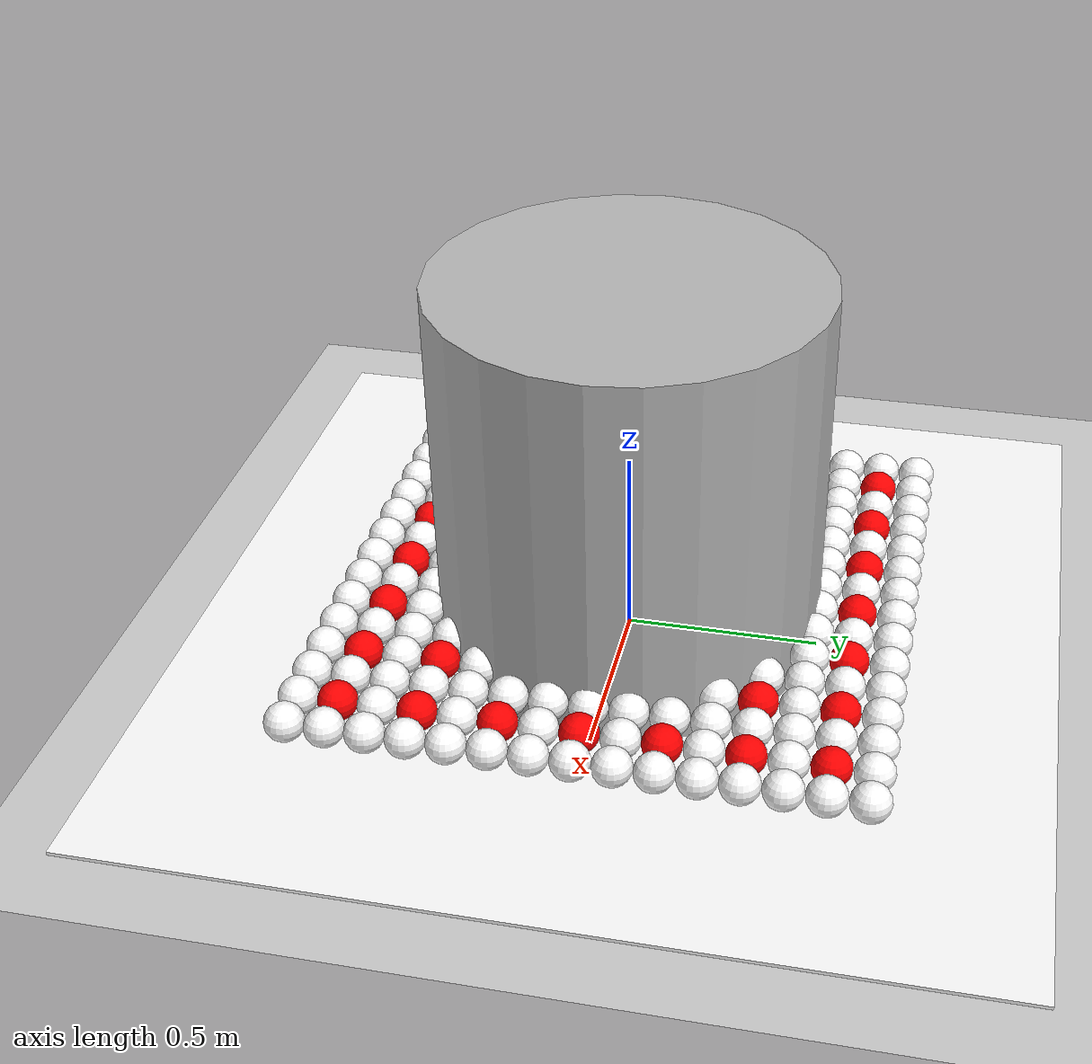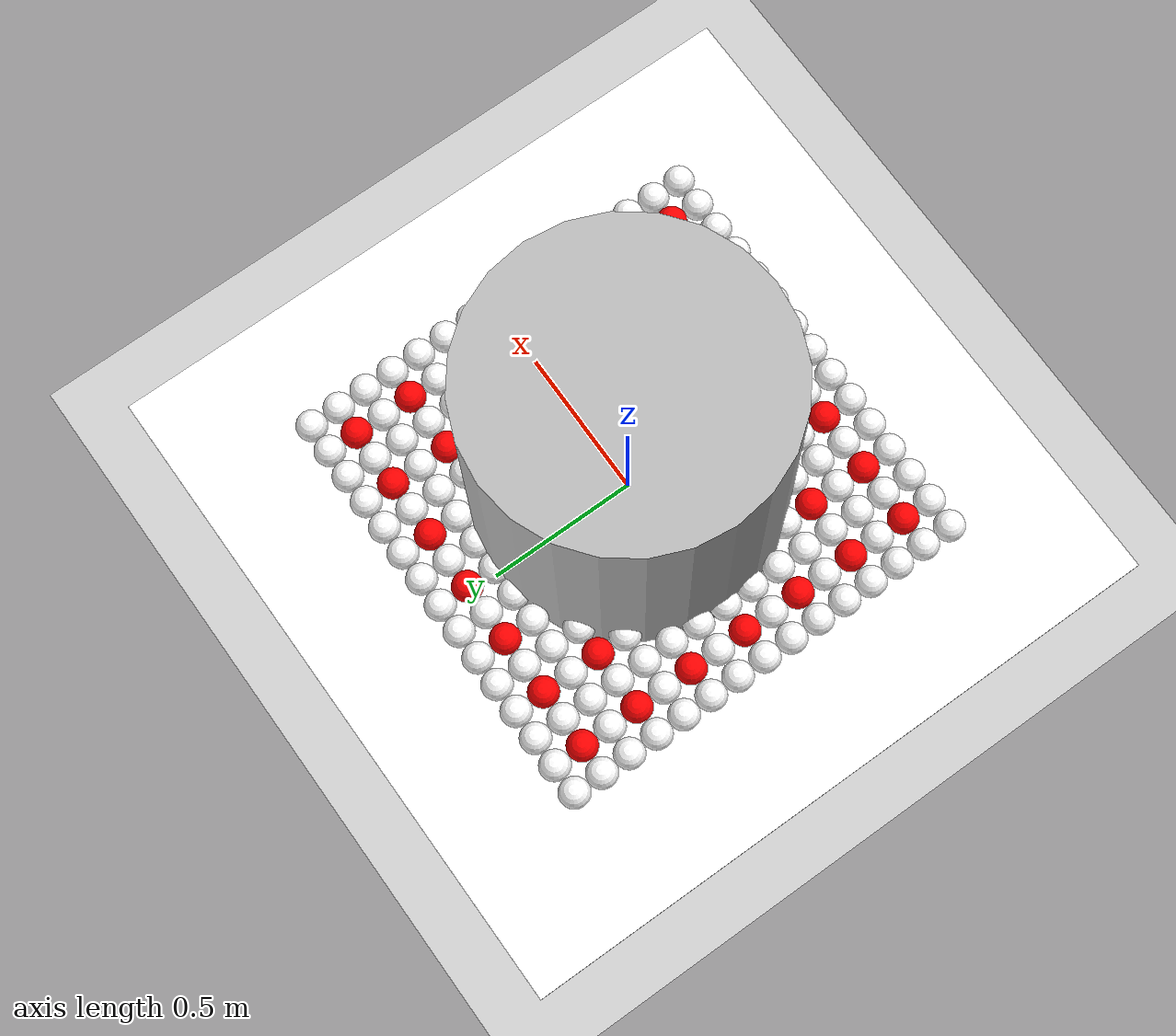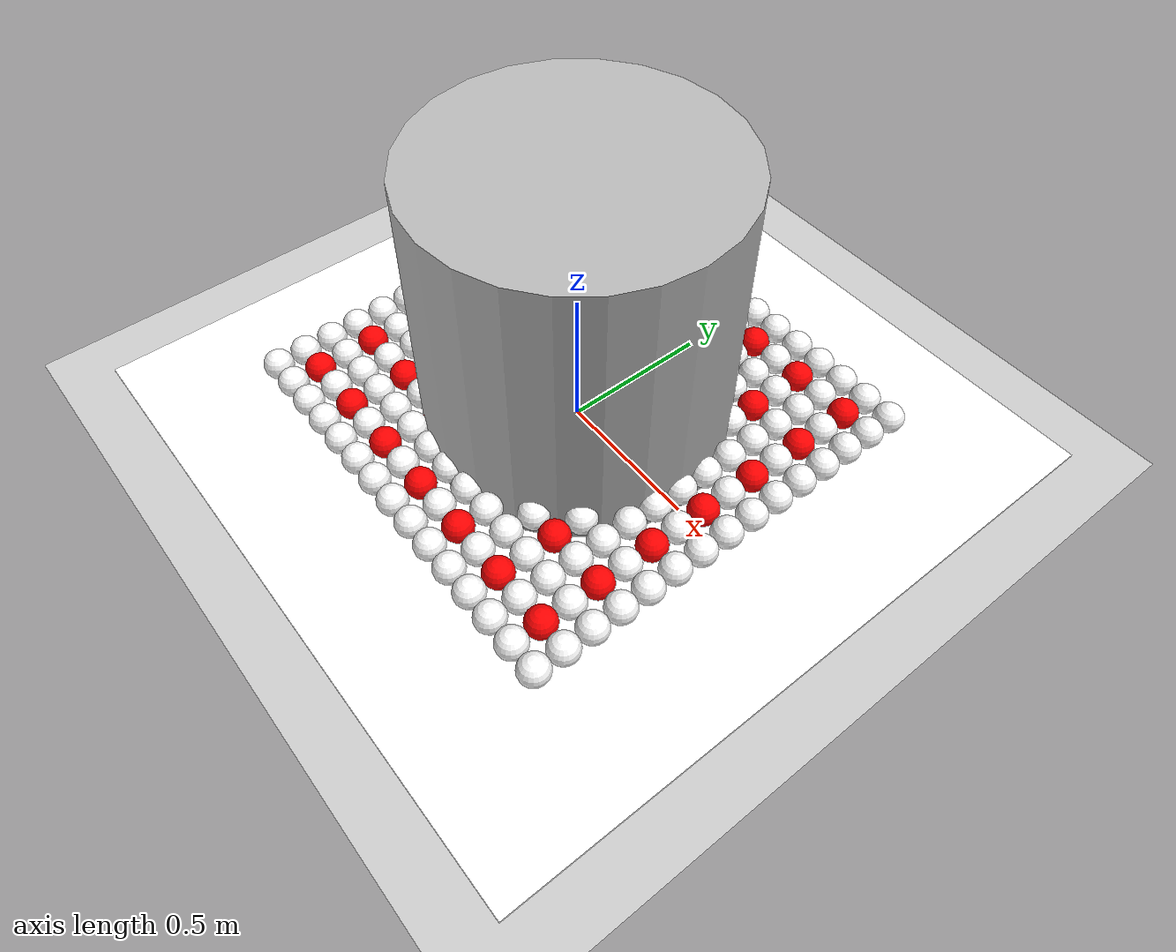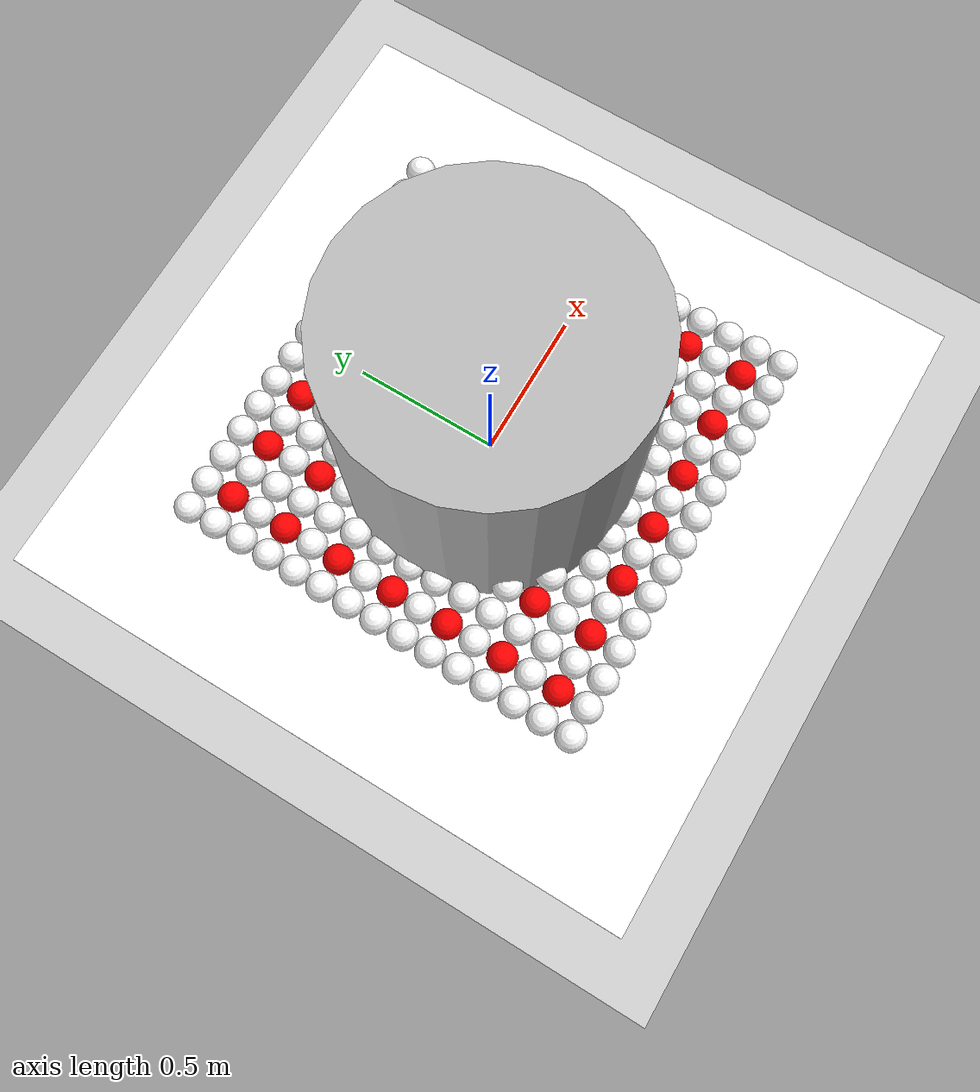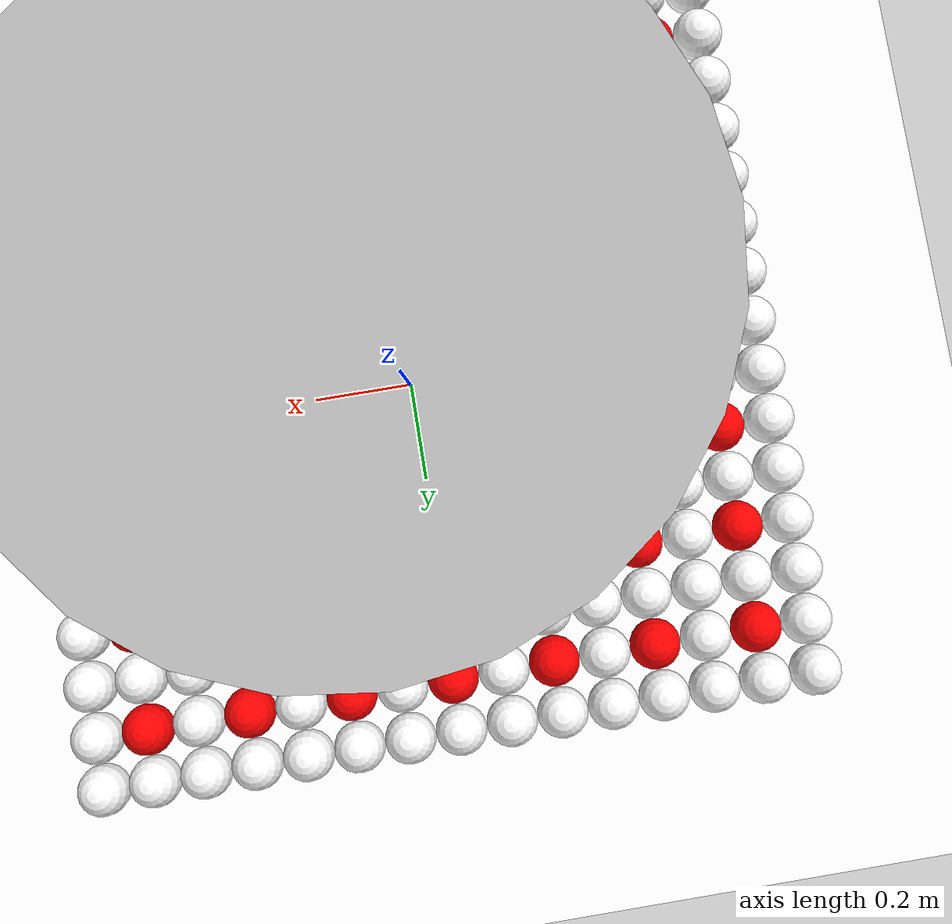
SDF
<?xml version="1.0"?>
<gazebo version="1.3">
<world name="default">

<include>
  <uri>model://ground_plane</uri>
</include>

<include>
  <uri>model://sun</uri>
</include>

<include>
  <uri>model://spring_board</uri>
</include>

<physics type="ode">
  <gravity>0.0 0.0 -9.8</gravity>
  <ode>
    <solver>
      <iters>300</iters>
    </solver>
  </ode>
</physics>

<include>
  <uri>model://cylinder</uri>
</include>

</world>
</gazebo>

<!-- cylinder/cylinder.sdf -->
<?xml version="1.0" ?>
<sdf version='1.4'>
    <model name='cylinder'>
		<link name='link'>
	      <pose>0 0 0.5 0 0 0</pose>
	      <inertial>
              <mass>2</mass>
        	  <inertia>
		          <ixx>0.145833</ixx>
		          <ixy>0</ixy>
		          <ixz>0</ixz>
		          <iyy>0.145833</iyy>
		          <iyz>0</iyz>
		          <izz>0</izz>
	          </inertia>
	      </inertial>
	      <collision name='collision'>
	          <pose>0 0 0 0 0 0</pose>
	          <geometry>
	              <cylinder>
	              	  <radius>0.5</radius>
	              	  <length>1</length>
	              </cylinder>
	          </geometry>
	      </collision>
	      <visual name='visual'>
	          <pose>0 0 0 0 0 0</pose>
	          <geometry>
	              <cylinder>
	                  <radius>0.5</radius>
	                  <length>1</length>
	              </cylinder>
    		  </geometry>
	      </visual>
	      <velocity_decay>
	          <linear>0</linear>
	          <angular>0</angular>
	      </velocity_decay>
	    </link>

		<joint name = "my_mass_joint" type="prismatic">
        	<parent>world</parent>
          	<child>link</child>
	        <axis>
            	<xyz>0 0 1</xyz>
          	</axis>
      	</joint>

      	<plugin name="mass_joint" filename="libMassJoint.so" />
      	<plugin name='cylinderJointControl' filename='libCylinderTrajectoryPlugin.so'>
      		<file_name>cylinder</file_name>
   	  	</plugin>

    </model>
</sdf>
